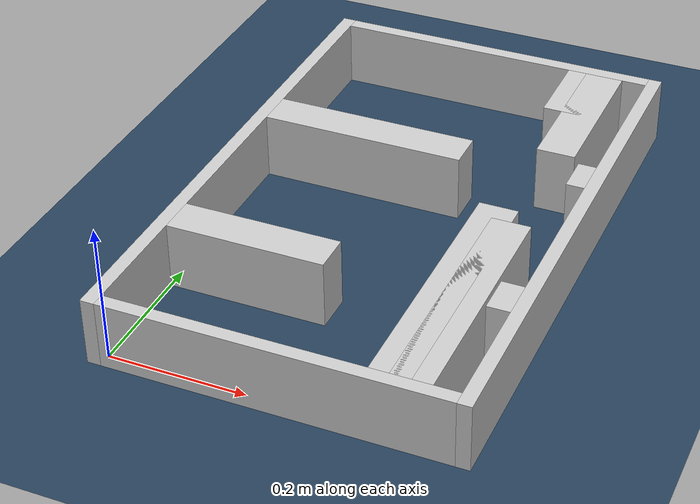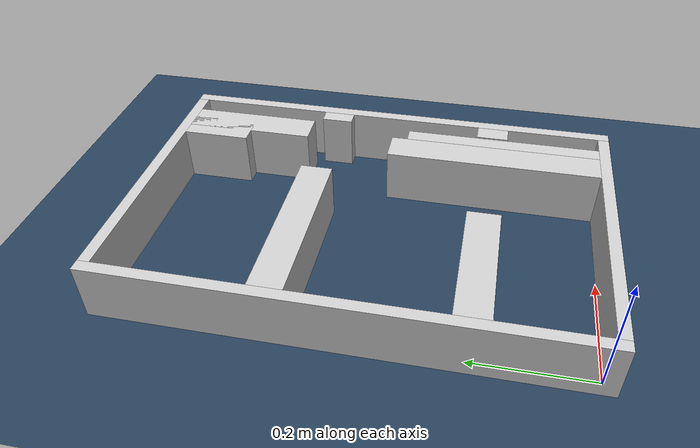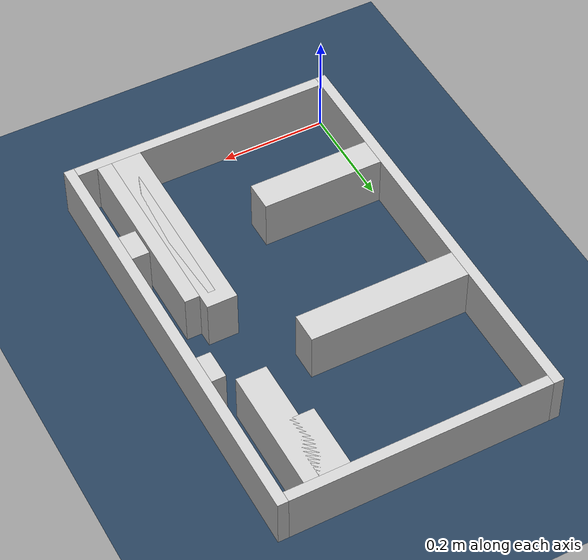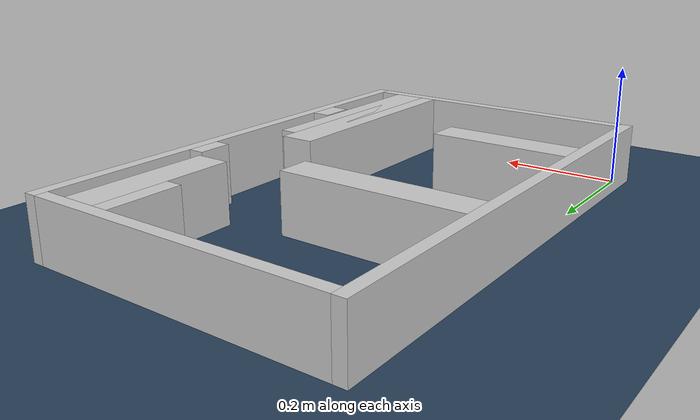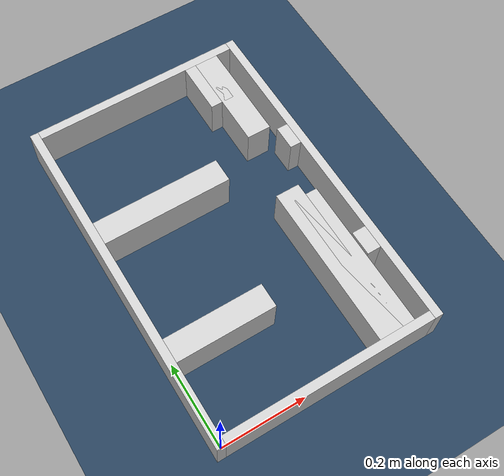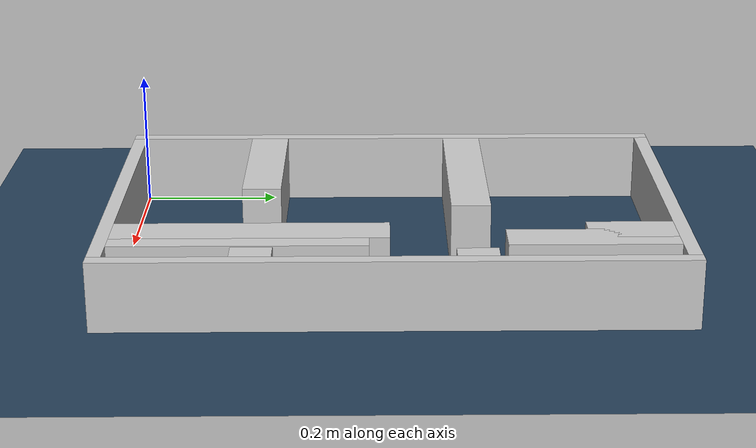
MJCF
<?xml version="1.0" ?>
<mujoco model="generated_real_template">
  <compiler angle="degree"/>
  <option timestep="0.002" integrator="implicitfast" iterations="100" cone="elliptic"/>
  <default>
    <geom density="1"/>
  </default>
  <asset>
    <texture builtin="gradient" height="3072" rgb1="0.3 0.5 0.7" rgb2="0 0 0" type="skybox" width="512"/>
    <texture builtin="checker" height="300" mark="edge" markrgb="0.8 0.8 0.8" name="groundplane" rgb1="0.2 0.3 0.4" rgb2="0.1 0.2 0.3" type="2d" width="300"/>
    <material name="groundplane" reflectance="0.2" texrepeat="5 5" texture="groundplane" texuniform="true"/>
  </asset>
  <worldbody>
    <light dir="0 0 -1" directional="true" pos="0 0 1.5"/>
    <geom name="floor" type="plane" condim="4" friction="0.5 0.005 0.001" material="groundplane" size="0 0 0.05"/>
    <body name="walls">
      <geom name="wall_boundary_left" type="box" condim="4" friction="1.0 0.005 0.0001" rgba="0.8 0.8 0.8 1" pos="-0.010000 0.387500 0.050000" euler="0 0 0.000000" size="0.010000 0.407500 0.050000"/>
      <geom name="wall_boundary_right" type="box" condim="4" friction="1.0 0.005 0.0001" rgba="0.8 0.8 0.8 1" pos="0.500000 0.387500 0.050000" euler="0 0 0.000000" size="0.010000 0.407500 0.050000"/>
      <geom name="wall_boundary_bottom" type="box" condim="4" friction="1.0 0.005 0.0001" rgba="0.8 0.8 0.8 1" pos="0.245000 -0.010000 0.050000" euler="0 0 0.000000" size="0.245000 0.010000 0.050000"/>
      <geom name="wall_boundary_top" type="box" condim="4" friction="1.0 0.005 0.0001" rgba="0.8 0.8 0.8 1" pos="0.245000 0.785000 0.050000" euler="0 0 0.000000" size="0.245000 0.010000 0.050000"/>
      <geom name="wall_inner_1_1" type="box" condim="4" friction="1.0 0.005 0.0001" rgba="0.8 0.8 0.8 1" pos="0.396831 0.190951 0.050000" euler="0 0 90.000000" size="0.190951 0.028500 0.050000"/>
      <geom name="wall_inner_1_2" type="box" condim="4" friction="1.0 0.005 0.0001" rgba="0.8 0.8 0.8 1" pos="0.396831 0.714233 0.050000" euler="0 0 90.000000" size="0.060767 0.028500 0.050000"/>
      <geom name="wall_inner_2_1" type="box" condim="4" friction="1.0 0.005 0.0001" rgba="0.8 0.8 0.8 1" pos="0.152039 0.498514 0.050000" euler="0 0 0.000000" size="0.152039 0.028500 0.050000"/>
      <geom name="wall_inner_2_2" type="box" condim="4" friction="1.0 0.005 0.0001" rgba="0.8 0.8 0.8 1" pos="0.476628 0.498514 0.050000" euler="0 0 0.000000" size="0.013372 0.028500 0.050000"/>
      <geom name="wall_inner_3_1" type="box" condim="4" friction="1.0 0.005 0.0001" rgba="0.8 0.8 0.8 1" pos="0.115973 0.195744 0.050000" euler="0 0 0.000000" size="0.115973 0.028500 0.050000"/>
      <geom name="wall_inner_3_2" type="box" condim="4" friction="1.0 0.005 0.0001" rgba="0.8 0.8 0.8 1" pos="0.473605 0.195744 0.050000" euler="0 0 0.000000" size="0.016395 0.028500 0.050000"/>
      <geom name="wall_inner_4_1" type="box" condim="4" friction="1.0 0.005 0.0001" rgba="0.8 0.8 0.8 1" pos="0.424714 0.176713 0.050000" euler="0 0 90.000000" size="0.176713 0.028500 0.050000"/>
      <geom name="wall_inner_4_2" type="box" condim="4" friction="1.0 0.005 0.0001" rgba="0.8 0.8 0.8 1" pos="0.424714 0.657768 0.050000" euler="0 0 90.000000" size="0.117232 0.028500 0.050000"/>
    </body>
  </worldbody>
</mujoco>
